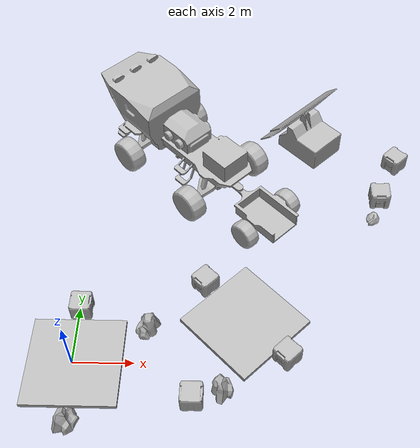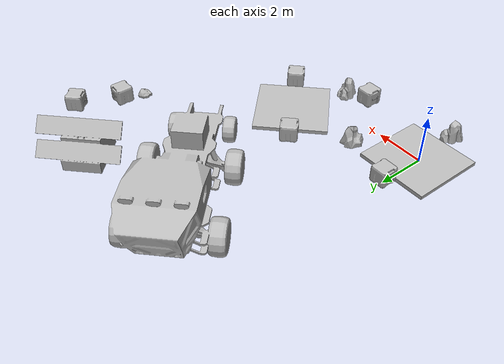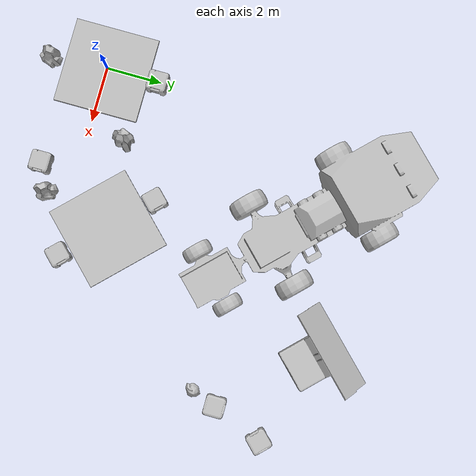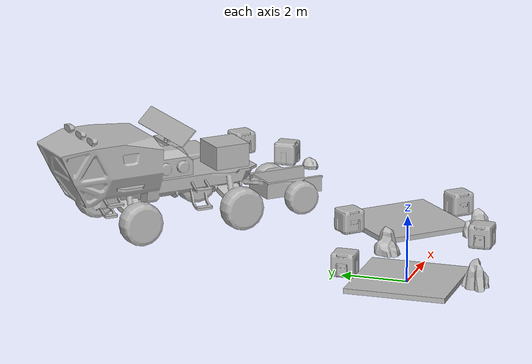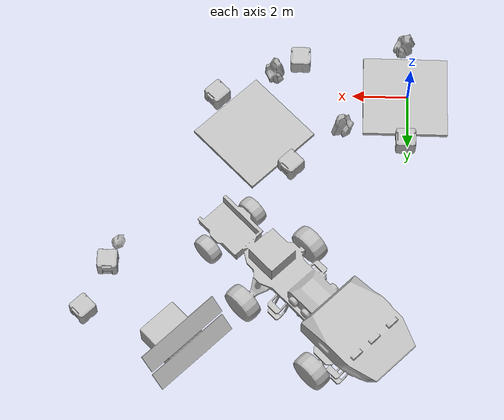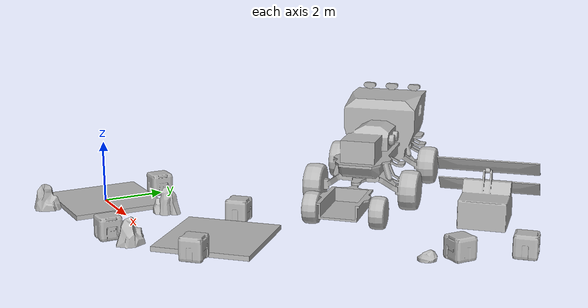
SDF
<sdf version="1.6">
 <world name="SRC_finals">
  <include>
   <name>walkway_1</name>
   <pose>0.09
      0
      -0.052151
      0
      0
      3.141592653589793</pose>
   <uri>model://walkway_finish_opposite</uri>
  </include>
  <include>
   <name>bling_1</name>
   <pose>0.09000000000000027
      1.924
      0
      0
      0
      -2.4492935982947064e-16</pose>
   <uri>model://mars_crate</uri>
  </include>
  <include>
   <name>bling_2</name>
   <pose>0.08999999999999976
      -2.024
      0
      0
      0
      3.141592653589793</pose>
   <uri>model://mars_rock_2</uri>
  </include>
  <include>
   <name>bling_3</name>
   <pose>2.3760000000000003
      1.2619999999999996
      0
      0
      0
      -2.4492935982947064e-16</pose>
   <uri>model://mars_rock_2</uri>
  </include>
  <include>
   <name>bling_4</name>
   <pose>4.792287390593274
      -0.8917140331215727
      0
      0
      0
      -2.356194490192345</pose>
   <uri>model://mars_rock_2</uri>
  </include>
  <include>
   <name>bling_5</name>
   <pose>3.9106949400811337
      -1.2506735555415056
      0
      0
      0
      3.141592653589793</pose>
   <uri>model://mars_crate</uri>
  </include>
  <include>
   <name>walkway_4</name>
   <pose>5.516364734528299
      1.6171008265282976
      -0.052151
      0
      0
      -2.3561944901923453</pose>
   <uri>model://walkway_finish_opposite</uri>
  </include>
  <include>
   <name>bling_6</name>
   <pose>6.876838181531217
      0.2566273795253798
      0
      0
      0
      -2.3561944901923453</pose>
   <uri>model://mars_crate</uri>
  </include>
  <include>
   <name>bling_7</name>
   <pose>4.155891287525382
      2.977574273531215
      0
      0
      0
      0.785398163397448</pose>
   <uri>model://mars_crate</uri>
  </include>
  <include>
   <pose>3.3407098253365084
        8.534292868616495
        0
        0
        0
        -2.3561944901923453</pose>
   <uri>model://mars_explorer</uri>
  </include>
  <include>
   <name>bling_8</name>
   <pose>10.18012875129826
      6.03633516755114
      0
      0
      0
      -2.3561944901923453</pose>
   <uri>model://mars_rock_1</uri>
  </include>
  <include>
   <name>bling_9</name>
   <pose>10.449686038823643
      6.91353788002576
      0
      0
      0
      -1.570796326794897</pose>
   <uri>model://mars_crate</uri>
  </include>
  <include>
   <pose>8.289177309171041
        9.420806609678362
        0.2
        0
        0
        0.785398163397448</pose>
   <uri>model://solar_array</uri>
  </include>
  <include>
   <name>bling_11</name>
   <pose>11.18762957782656
      8.693429167551141
      0
      0
      0
      -2.3561944901923453</pose>
   <uri>model://mars_crate</uri>
  </include>
 </world>
</sdf>
